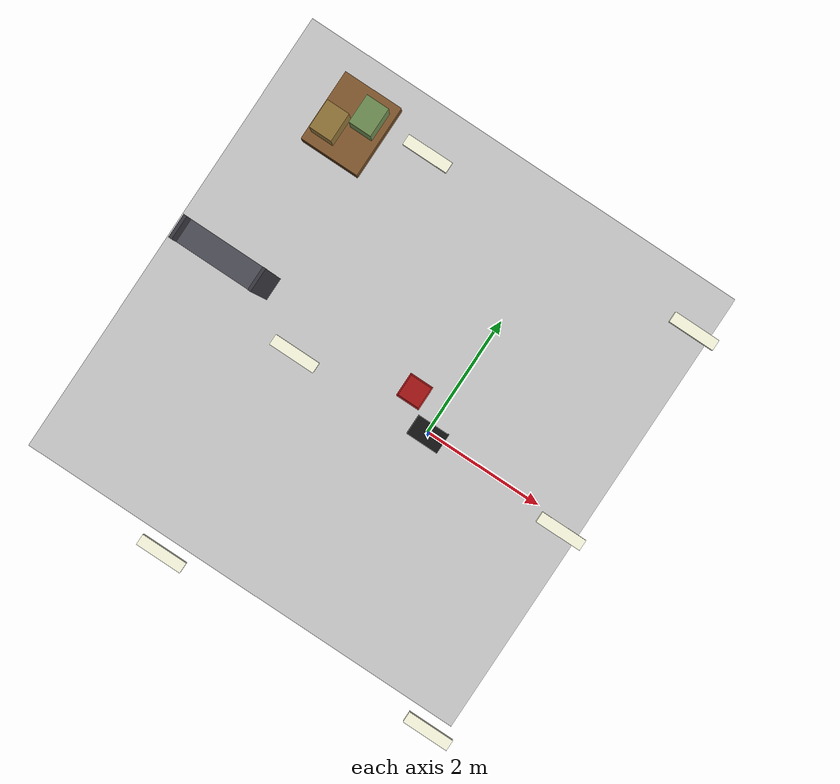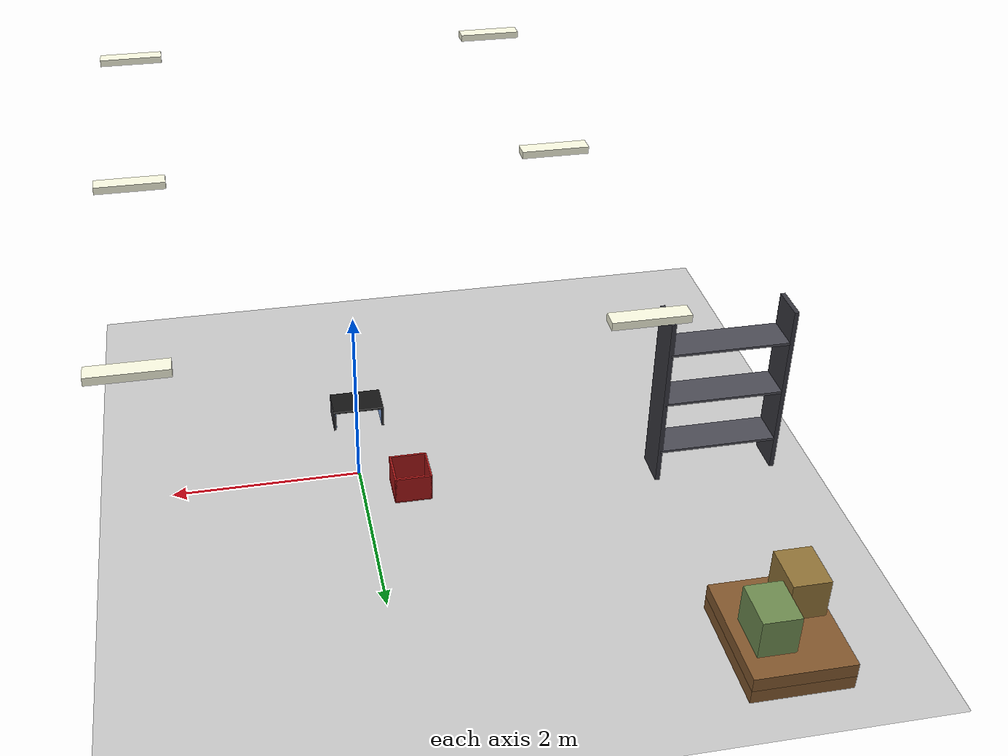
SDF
<sdf version="1.6">
 <world name="weld_inspection_world">
  <include><uri>model://ground_plane</uri></include>
  <model name="light_fixtures">
   <static>true</static>
   <link name="f1">
    <pose>-2 -3 3.72 0 0 0</pose>
    <visual name="v">
     <geometry><box><size>0.65 0.15 0.07</size></box></geometry>
     <material><ambient>0.95 0.95 0.85 1</ambient><diffuse>1.0 1.0 0.9 1</diffuse></material>
    </visual>
   </link>
   <link name="f2">
    <pose>2 -3 3.72 0 0 0</pose>
    <visual name="v">
     <geometry><box><size>0.65 0.15 0.07</size></box></geometry>
     <material><ambient>0.95 0.95 0.85 1</ambient><diffuse>1.0 1.0 0.9 1</diffuse></material>
    </visual>
   </link>
   <link name="f3">
    <pose>-2 0 3.72 0 0 0</pose>
    <visual name="v">
     <geometry><box><size>0.65 0.15 0.07</size></box></geometry>
     <material><ambient>0.95 0.95 0.85 1</ambient><diffuse>1.0 1.0 0.9 1</diffuse></material>
    </visual>
   </link>
   <link name="f4">
    <pose>2 0 3.72 0 0 0</pose>
    <visual name="v">
     <geometry><box><size>0.65 0.15 0.07</size></box></geometry>
     <material><ambient>0.95 0.95 0.85 1</ambient><diffuse>1.0 1.0 0.9 1</diffuse></material>
    </visual>
   </link>
   <link name="f5">
    <pose>-2 3 3.72 0 0 0</pose>
    <visual name="v">
     <geometry><box><size>0.65 0.15 0.07</size></box></geometry>
     <material><ambient>0.95 0.95 0.85 1</ambient><diffuse>1.0 1.0 0.9 1</diffuse></material>
    </visual>
   </link>
   <link name="f6">
    <pose>2 3 3.72 0 0 0</pose>
    <visual name="v">
     <geometry><box><size>0.65 0.15 0.07</size></box></geometry>
     <material><ambient>0.95 0.95 0.85 1</ambient><diffuse>1.0 1.0 0.9 1</diffuse></material>
    </visual>
   </link>
  </model>
  <model name="detection_chamber">
   <static>true</static>
   <link name="wall_left">
    <pose>-0.25 0 0.86 0 0 0</pose>
    <visual name="v">
     <geometry><box><size>0.025 0.32 0.22</size></box></geometry>
     <material><ambient>0.15 0.15 0.18 1</ambient><diffuse>0.2 0.2 0.22 1</diffuse></material>
    </visual>
   </link>
   <link name="wall_right">
    <pose>0.25 0 0.86 0 0 0</pose>
    <visual name="v">
     <geometry><box><size>0.025 0.32 0.22</size></box></geometry>
     <material><ambient>0.15 0.15 0.18 1</ambient><diffuse>0.2 0.2 0.22 1</diffuse></material>
    </visual>
   </link>
   <link name="roof">
    <pose>0 0 0.97 0 0 0</pose>
    <visual name="v">
     <geometry><box><size>0.52 0.32 0.022</size></box></geometry>
     <material><ambient>0.06 0.06 0.06 1</ambient><diffuse>0.08 0.08 0.08 1</diffuse></material>
    </visual>
   </link>
   <link name="led_left">
    <pose>-0.236 0 0.86 0 0 0</pose>
    <visual name="v">
     <geometry><box><size>0.004 0.30 0.18</size></box></geometry>
     <material>
      <ambient>0.6 0.75 1.0 1</ambient>
      <diffuse>0.6 0.75 1.0 1</diffuse>
      <emissive>0.25 0.35 0.55 1</emissive>
     </material>
    </visual>
   </link>
   <link name="led_right">
    <pose>0.236 0 0.86 0 0 0</pose>
    <visual name="v">
     <geometry><box><size>0.004 0.30 0.18</size></box></geometry>
     <material>
      <ambient>0.6 0.75 1.0 1</ambient>
      <diffuse>0.6 0.75 1.0 1</diffuse>
      <emissive>0.25 0.35 0.55 1</emissive>
     </material>
    </visual>
   </link>
  </model>
  <model name="bad_bin">
   <static>true</static>
   <pose>-0.5 0.4 0.05 0 0 0</pose>
   <link name="link">
    <collision name="bottom"><geometry><box><size>0.4 0.4 0.02</size></box></geometry></collision>
    <visual name="bottom">
     <geometry><box><size>0.4 0.4 0.02</size></box></geometry>
     <material><ambient>0.55 0.07 0.07 1</ambient><diffuse>0.65 0.08 0.08 1</diffuse></material>
    </visual>
    <collision name="w1">
     <pose>0.19 0 0.15 0 0 0</pose>
     <geometry><box><size>0.02 0.4 0.3</size></box></geometry>
    </collision>
    <visual name="w1">
     <pose>0.19 0 0.15 0 0 0</pose>
     <geometry><box><size>0.02 0.4 0.3</size></box></geometry>
     <material><ambient>0.55 0.07 0.07 1</ambient><diffuse>0.65 0.08 0.08 1</diffuse></material>
    </visual>
    <collision name="w2">
     <pose>-0.19 0 0.15 0 0 0</pose>
     <geometry><box><size>0.02 0.4 0.3</size></box></geometry>
    </collision>
    <visual name="w2">
     <pose>-0.19 0 0.15 0 0 0</pose>
     <geometry><box><size>0.02 0.4 0.3</size></box></geometry>
     <material><ambient>0.55 0.07 0.07 1</ambient><diffuse>0.65 0.08 0.08 1</diffuse></material>
    </visual>
    <collision name="w3">
     <pose>0 0.19 0.15 0 0 0</pose>
     <geometry><box><size>0.4 0.02 0.3</size></box></geometry>
    </collision>
    <visual name="w3">
     <pose>0 0.19 0.15 0 0 0</pose>
     <geometry><box><size>0.4 0.02 0.3</size></box></geometry>
     <material><ambient>0.55 0.07 0.07 1</ambient><diffuse>0.65 0.08 0.08 1</diffuse></material>
    </visual>
    <collision name="w4">
     <pose>0 -0.19 0.15 0 0 0</pose>
     <geometry><box><size>0.4 0.02 0.3</size></box></geometry>
    </collision>
    <visual name="w4">
     <pose>0 -0.19 0.15 0 0 0</pose>
     <geometry><box><size>0.4 0.02 0.3</size></box></geometry>
     <material><ambient>0.55 0.07 0.07 1</ambient><diffuse>0.65 0.08 0.08 1</diffuse></material>
    </visual>
   </link>
  </model>
  <model name="shelf_rack_2">
   <static>true</static>
   <pose>-3.8 0.5 0 0 0 0</pose>
   <link name="link">
    <visual name="ul">
     <pose>-0.65 0 1.0 0 0 0</pose>
     <geometry><box><size>0.05 0.38 2.0</size></box></geometry>
     <material><ambient>0.18 0.18 0.2 1</ambient><diffuse>0.22 0.22 0.25 1</diffuse></material>
    </visual>
    <visual name="ur">
     <pose>0.65 0 1.0 0 0 0</pose>
     <geometry><box><size>0.05 0.38 2.0</size></box></geometry>
     <material><ambient>0.18 0.18 0.2 1</ambient><diffuse>0.22 0.22 0.25 1</diffuse></material>
    </visual>
    <visual name="s1">
     <pose>0 0 0.38 0 0 0</pose>
     <geometry><box><size>1.3 0.38 0.028</size></box></geometry>
     <material><ambient>0.26 0.26 0.28 1</ambient><diffuse>0.3 0.3 0.34 1</diffuse></material>
    </visual>
    <visual name="s2">
     <pose>0 0 1.0 0 0 0</pose>
     <geometry><box><size>1.3 0.38 0.028</size></box></geometry>
     <material><ambient>0.26 0.26 0.28 1</ambient><diffuse>0.3 0.3 0.34 1</diffuse></material>
    </visual>
    <visual name="s3">
     <pose>0 0 1.62 0 0 0</pose>
     <geometry><box><size>1.3 0.38 0.028</size></box></geometry>
     <material><ambient>0.26 0.26 0.28 1</ambient><diffuse>0.3 0.3 0.34 1</diffuse></material>
    </visual>
   </link>
  </model>
  <model name="pallets">
   <static>true</static>
   <pose>-3.5 3.2 0 0 0 0</pose>
   <link name="p1">
    <pose>0 0 0.075 0 0 0</pose>
    <visual name="v">
     <geometry><box><size>1.0 1.2 0.15</size></box></geometry>
     <material><ambient>0.42 0.28 0.12 1</ambient><diffuse>0.52 0.35 0.18 1</diffuse></material>
    </visual>
    <collision name="c"><geometry><box><size>1.0 1.2 0.15</size></box></geometry></collision>
   </link>
   <link name="p2">
    <pose>0 0 0.225 0 0 0</pose>
    <visual name="v">
     <geometry><box><size>1.0 1.2 0.15</size></box></geometry>
     <material><ambient>0.42 0.28 0.12 1</ambient><diffuse>0.52 0.35 0.18 1</diffuse></material>
    </visual>
   </link>
   <link name="crate1">
    <pose>-0.22 -0.2 0.58 0 0 0</pose>
    <visual name="v">
     <geometry><box><size>0.38 0.48 0.42</size></box></geometry>
     <material><ambient>0.48 0.38 0.18 1</ambient><diffuse>0.58 0.46 0.22 1</diffuse></material>
    </visual>
   </link>
   <link name="crate2">
    <pose>0.22 0.18 0.58 0 0 0</pose>
    <visual name="v">
     <geometry><box><size>0.38 0.48 0.42</size></box></geometry>
     <material><ambient>0.36 0.48 0.26 1</ambient><diffuse>0.44 0.56 0.32 1</diffuse></material>
    </visual>
   </link>
  </model>
 </world>
</sdf>
